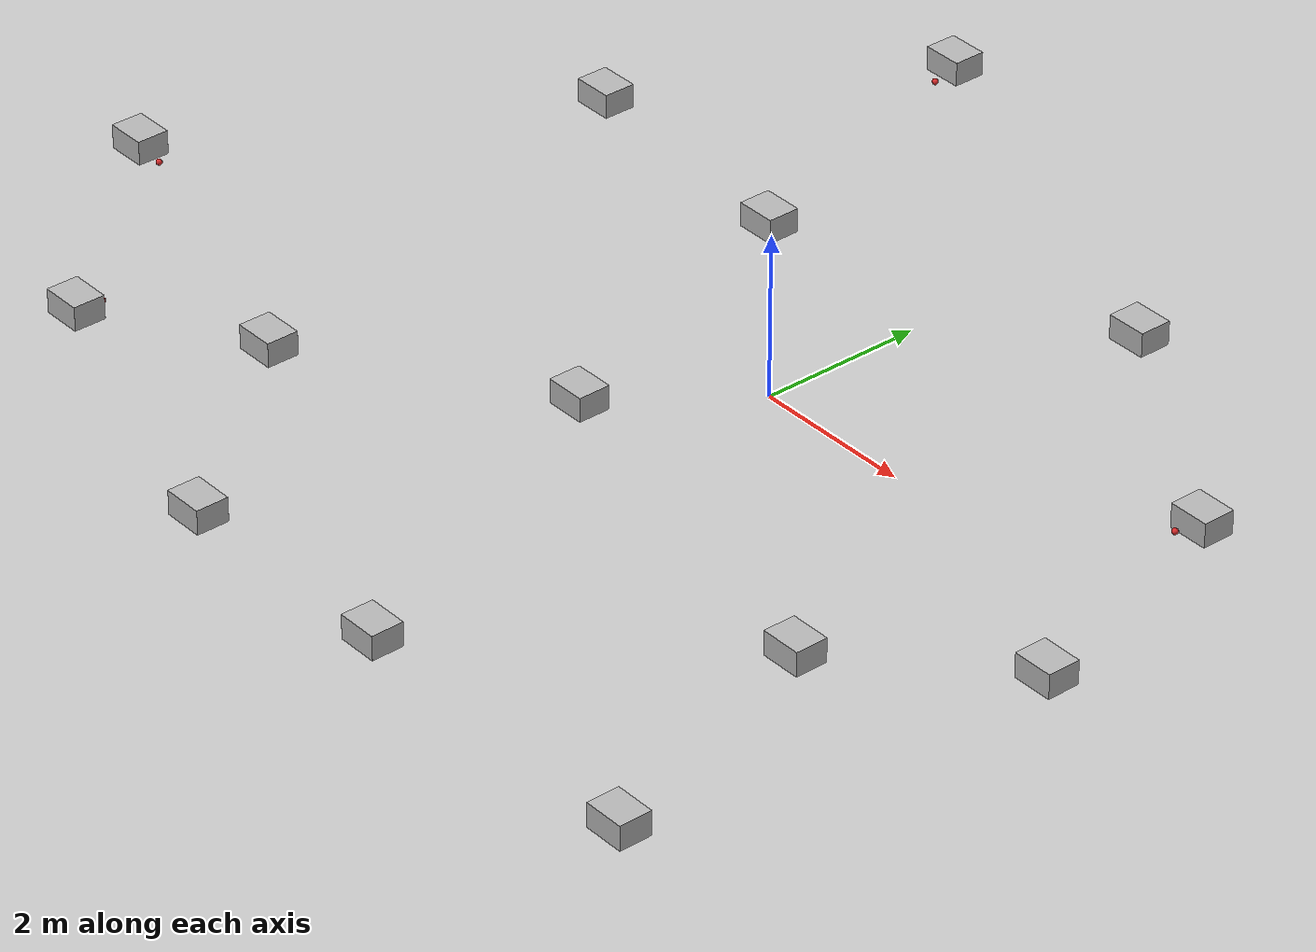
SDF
<sdf version="1.7">
 <world name="default">
  <light name="sun" type="directional">
   <pose>0 0 10 0 -0 0</pose>
   <diffuse>0.8 0.8 0.8 1</diffuse>
   <specular>0.2 0.2 0.2 1</specular>
   <attenuation>
    <range>1000</range>
    <constant>0.9</constant>
    <linear>0.01</linear>
    <quadratic>0.001</quadratic>
   </attenuation>
   <direction>-0.5 0.1 -0.9</direction>
   <spot><inner_angle>0</inner_angle><outer_angle>0</outer_angle><falloff>0</falloff></spot>
  </light>
  <model name="ground_plane">
   <static>1</static>
   <link name="link">
    <collision name="collision">
     <geometry><plane><normal>0 0 1</normal><size>100 100</size></plane></geometry>
     <surface><friction><ode><mu>100</mu><mu2>50</mu2></ode></friction></surface>
    </collision>
    <visual name="visual">
     <cast_shadows>0</cast_shadows>
     <geometry><plane><normal>0 0 1</normal><size>100 100</size></plane></geometry>
     <material>
      <script><uri>file://media/materials/scripts/gazebo.material</uri><name>Gazebo/Grey</name></script>
     </material>
    </visual>
   </link>
  </model>
  <gravity>0 0 -9.8</gravity>
  <magnetic_field>6e-06 2.3e-05 -4.2e-05</magnetic_field>
  <atmosphere type="adiabatic"/>
  <physics type="ode">
   <max_step_size>0.001</max_step_size>
   <real_time_factor>1</real_time_factor>
   <real_time_update_rate>1000</real_time_update_rate>
  </physics>
  <scene><ambient>0.4 0.4 0.4 1</ambient><background>0.7 0.7 0.7 1</background><shadows>1</shadows></scene>
  <spherical_coordinates>
   <surface_model>EARTH_WGS84</surface_model>
   <latitude_deg>0</latitude_deg>
   <longitude_deg>0</longitude_deg>
   <elevation>0</elevation>
   <heading_deg>0</heading_deg>
  </spherical_coordinates>
  <model name="cardboard_box">
   <pose>-4.08646 -3.55953 0.149 0 -0 0</pose>
   <link name="link">
    <inertial>
     <mass>2</mass>
     <inertia>
      <ixx>0.0416667</ixx>
      <ixy>0</ixy>
      <ixz>0</ixz>
      <iyy>0.0566667</iyy>
      <iyz>0</iyz>
      <izz>0.0683333</izz>
     </inertia>
    </inertial>
    <collision name="collision">
     <geometry><box><size>0.5 0.4 0.3</size></box></geometry>
     <surface>
      <friction><ode><mu>1</mu><mu2>1</mu2></ode></friction>
      <contact><ode><kp>1e+07</kp><kd>1</kd><min_depth>0.001</min_depth><max_vel>0.1</max_vel></ode></contact>
     </surface>
    </collision>
    <visual name="visual">
     <pose>0 0 -0.15 0 -0 0</pose>
     <geometry>
      <mesh><uri>model://cardboard_box/meshes/cardboard_box.dae</uri><scale>1.25932 1.00745 0.755591</scale></mesh>
     </geometry>
    </visual>
   </link>
  </model>
  <model name="cardboard_box_0">
   <pose>-3.7887 6.05949 0.149 0 -0 0</pose>
   <link name="link">
    <inertial>
     <mass>2</mass>
     <inertia>
      <ixx>0.0416667</ixx>
      <ixy>0</ixy>
      <ixz>0</ixz>
      <iyy>0.0566667</iyy>
      <iyz>0</iyz>
      <izz>0.0683333</izz>
     </inertia>
    </inertial>
    <collision name="collision">
     <geometry><box><size>0.5 0.4 0.3</size></box></geometry>
     <surface>
      <friction><ode><mu>1</mu><mu2>1</mu2></ode></friction>
      <contact><ode><kp>1e+07</kp><kd>1</kd><min_depth>0.001</min_depth><max_vel>0.1</max_vel></ode></contact>
     </surface>
    </collision>
    <visual name="visual">
     <pose>0 0 -0.15 0 -0 0</pose>
     <geometry>
      <mesh><uri>model://cardboard_box/meshes/cardboard_box.dae</uri><scale>1.25932 1.00745 0.755591</scale></mesh>
     </geometry>
    </visual>
   </link>
  </model>
  <model name="cardboard_box_1">
   <pose>1.71637 3.75408 0.149 0 -0 0</pose>
   <link name="link">
    <inertial>
     <mass>2</mass>
     <inertia>
      <ixx>0.0416667</ixx>
      <ixy>0</ixy>
      <ixz>0</ixz>
      <iyy>0.0566667</iyy>
      <iyz>0</iyz>
      <izz>0.0683333</izz>
     </inertia>
    </inertial>
    <collision name="collision">
     <geometry><box><size>0.5 0.4 0.3</size></box></geometry>
     <surface>
      <friction><ode><mu>1</mu><mu2>1</mu2></ode></friction>
      <contact><ode><kp>1e+07</kp><kd>1</kd><min_depth>0.001</min_depth><max_vel>0.1</max_vel></ode></contact>
     </surface>
    </collision>
    <visual name="visual">
     <pose>0 0 -0.15 0 -0 0</pose>
     <geometry>
      <mesh><uri>model://cardboard_box/meshes/cardboard_box.dae</uri><scale>1.25932 1.00745 0.755591</scale></mesh>
     </geometry>
    </visual>
   </link>
  </model>
  <model name="cardboard_box_2">
   <pose>0.869314 -5.99769 0.149 0 -0 0</pose>
   <link name="link">
    <inertial>
     <mass>2</mass>
     <inertia>
      <ixx>0.0416667</ixx>
      <ixy>0</ixy>
      <ixz>0</ixz>
      <iyy>0.0566667</iyy>
      <iyz>0</iyz>
      <izz>0.0683333</izz>
     </inertia>
    </inertial>
    <collision name="collision">
     <geometry><box><size>0.5 0.4 0.3</size></box></geometry>
     <surface>
      <friction><ode><mu>1</mu><mu2>1</mu2></ode></friction>
      <contact><ode><kp>1e+07</kp><kd>1</kd><min_depth>0.001</min_depth><max_vel>0.1</max_vel></ode></contact>
     </surface>
    </collision>
    <visual name="visual">
     <pose>0 0 -0.15 0 -0 0</pose>
     <geometry>
      <mesh><uri>model://cardboard_box/meshes/cardboard_box.dae</uri><scale>1.25932 1.00745 0.755591</scale></mesh>
     </geometry>
    </visual>
   </link>
  </model>
  <model name="cardboard_box_3">
   <pose>3.77986 -2.91897 0.149 0 -0 0</pose>
   <link name="link">
    <inertial>
     <mass>2</mass>
     <inertia>
      <ixx>0.0416667</ixx>
      <ixy>0</ixy>
      <ixz>0</ixz>
      <iyy>0.0566667</iyy>
      <iyz>0</iyz>
      <izz>0.0683333</izz>
     </inertia>
    </inertial>
    <collision name="collision">
     <geometry><box><size>0.5 0.4 0.3</size></box></geometry>
     <surface>
      <friction><ode><mu>1</mu><mu2>1</mu2></ode></friction>
      <contact><ode><kp>1e+07</kp><kd>1</kd><min_depth>0.001</min_depth><max_vel>0.1</max_vel></ode></contact>
     </surface>
    </collision>
    <visual name="visual">
     <pose>0 0 -0.15 0 -0 0</pose>
     <geometry>
      <mesh><uri>model://cardboard_box/meshes/cardboard_box.dae</uri><scale>1.25932 1.00745 0.755591</scale></mesh>
     </geometry>
    </visual>
   </link>
  </model>
  <model name="cardboard_box_4">
   <pose>-1.14457 -1.66818 0.149 0 -0 0</pose>
   <link name="link">
    <inertial>
     <mass>2</mass>
     <inertia>
      <ixx>0.0416667</ixx>
      <ixy>0</ixy>
      <ixz>0</ixz>
      <iyy>0.0566667</iyy>
      <iyz>0</iyz>
      <izz>0.0683333</izz>
     </inertia>
    </inertial>
    <collision name="collision">
     <geometry><box><size>0.5 0.4 0.3</size></box></geometry>
     <surface>
      <friction><ode><mu>1</mu><mu2>1</mu2></ode></friction>
      <contact><ode><kp>1e+07</kp><kd>1</kd><min_depth>0.001</min_depth><max_vel>0.1</max_vel></ode></contact>
     </surface>
    </collision>
    <visual name="visual">
     <pose>0 0 -0.15 0 -0 0</pose>
     <geometry>
      <mesh><uri>model://cardboard_box/meshes/cardboard_box.dae</uri><scale>1.25932 1.00745 0.755591</scale></mesh>
     </geometry>
    </visual>
   </link>
  </model>
  <model name="cardboard_box_5">
   <pose>-5.78575 2.51837 0.149 0 -0 0</pose>
   <link name="link">
    <inertial>
     <mass>2</mass>
     <inertia>
      <ixx>0.0416667</ixx>
      <ixy>0</ixy>
      <ixz>0</ixz>
      <iyy>0.0566667</iyy>
      <iyz>0</iyz>
      <izz>0.0683333</izz>
     </inertia>
    </inertial>
    <collision name="collision">
     <geometry><box><size>0.5 0.4 0.3</size></box></geometry>
     <surface>
      <friction><ode><mu>1</mu><mu2>1</mu2></ode></friction>
      <contact><ode><kp>1e+07</kp><kd>1</kd><min_depth>0.001</min_depth><max_vel>0.1</max_vel></ode></contact>
     </surface>
    </collision>
    <visual name="visual">
     <pose>0 0 -0.15 0 -0 0</pose>
     <geometry>
      <mesh><uri>model://cardboard_box/meshes/cardboard_box.dae</uri><scale>1.25932 1.00745 0.755591</scale></mesh>
     </geometry>
    </visual>
   </link>
  </model>
  <model name="cardboard_box_6">
   <pose>-8.33695 -2.16386 0.149 0 -0 0</pose>
   <link name="link">
    <inertial>
     <mass>2</mass>
     <inertia>
      <ixx>0.0416667</ixx>
      <ixy>0</ixy>
      <ixz>0</ixz>
      <iyy>0.0566667</iyy>
      <iyz>0</iyz>
      <izz>0.0683333</izz>
     </inertia>
    </inertial>
    <collision name="collision">
     <geometry><box><size>0.5 0.4 0.3</size></box></geometry>
     <surface>
      <friction><ode><mu>1</mu><mu2>1</mu2></ode></friction>
      <contact><ode><kp>1e+07</kp><kd>1</kd><min_depth>0.001</min_depth><max_vel>0.1</max_vel></ode></contact>
     </surface>
    </collision>
    <visual name="visual">
     <pose>0 0 -0.15 0 -0 0</pose>
     <geometry>
      <mesh><uri>model://cardboard_box/meshes/cardboard_box.dae</uri><scale>1.25932 1.00745 0.755591</scale></mesh>
     </geometry>
    </visual>
   </link>
  </model>
  <model name="cardboard_box_7">
   <pose>4.73918 1.77466 0.149 0 -0 0</pose>
   <link name="link">
    <inertial>
     <mass>2</mass>
     <inertia>
      <ixx>0.0416667</ixx>
      <ixy>0</ixy>
      <ixz>0</ixz>
      <iyy>0.0566667</iyy>
      <iyz>0</iyz>
      <izz>0.0683333</izz>
     </inertia>
    </inertial>
    <collision name="collision">
     <geometry><box><size>0.5 0.4 0.3</size></box></geometry>
     <surface>
      <friction><ode><mu>1</mu><mu2>1</mu2></ode></friction>
      <contact><ode><kp>1e+07</kp><kd>1</kd><min_depth>0.001</min_depth><max_vel>0.1</max_vel></ode></contact>
     </surface>
    </collision>
    <visual name="visual">
     <pose>0 0 -0.15 0 -0 0</pose>
     <geometry>
      <mesh><uri>model://cardboard_box/meshes/cardboard_box.dae</uri><scale>1.25932 1.00745 0.755591</scale></mesh>
     </geometry>
    </visual>
   </link>
  </model>
  <model name="cardboard_box_8">
   <pose>4.85592 -6.0892 0.149 0 -0 0</pose>
   <link name="link">
    <inertial>
     <mass>2</mass>
     <inertia>
      <ixx>0.0416667</ixx>
      <ixy>0</ixy>
      <ixz>0</ixz>
      <iyy>0.0566667</iyy>
      <iyz>0</iyz>
      <izz>0.0683333</izz>
     </inertia>
    </inertial>
    <collision name="collision">
     <geometry><box><size>0.5 0.4 0.3</size></box></geometry>
     <surface>
      <friction><ode><mu>1</mu><mu2>1</mu2></ode></friction>
      <contact><ode><kp>1e+07</kp><kd>1</kd><min_depth>0.001</min_depth><max_vel>0.1</max_vel></ode></contact>
     </surface>
    </collision>
    <visual name="visual">
     <pose>0 0 -0.15 0 -0 0</pose>
     <geometry>
      <mesh><uri>model://cardboard_box/meshes/cardboard_box.dae</uri><scale>1.25932 1.00745 0.755591</scale></mesh>
     </geometry>
    </visual>
   </link>
  </model>
  <model name="cardboard_box_9">
   <pose>-5.98727 -4.72925 0.149 0 -0 0</pose>
   <link name="link">
    <inertial>
     <mass>2</mass>
     <inertia>
      <ixx>0.0416667</ixx>
      <ixy>0</ixy>
      <ixz>0</ixz>
      <iyy>0.0566667</iyy>
      <iyz>0</iyz>
      <izz>0.0683333</izz>
     </inertia>
    </inertial>
    <collision name="collision">
     <geometry><box><size>0.5 0.4 0.3</size></box></geometry>
     <surface>
      <friction><ode><mu>1</mu><mu2>1</mu2></ode></friction>
      <contact><ode><kp>1e+07</kp><kd>1</kd><min_depth>0.001</min_depth><max_vel>0.1</max_vel></ode></contact>
     </surface>
    </collision>
    <visual name="visual">
     <pose>0 0 -0.15 0 -0 0</pose>
     <geometry>
      <mesh><uri>model://cardboard_box/meshes/cardboard_box.dae</uri><scale>1.25932 1.00745 0.755591</scale></mesh>
     </geometry>
    </visual>
   </link>
  </model>
  <model name="cardboard_box_10">
   <pose>-2.56206 2.1946 0.149 0 -0 0</pose>
   <link name="link">
    <inertial>
     <mass>2</mass>
     <inertia>
      <ixx>0.0416667</ixx>
      <ixy>0</ixy>
      <ixz>0</ixz>
      <iyy>0.0566667</iyy>
      <iyz>0</iyz>
      <izz>0.0683333</izz>
     </inertia>
    </inertial>
    <collision name="collision">
     <geometry><box><size>0.5 0.4 0.3</size></box></geometry>
     <surface>
      <friction><ode><mu>1</mu><mu2>1</mu2></ode></friction>
      <contact><ode><kp>1e+07</kp><kd>1</kd><min_depth>0.001</min_depth><max_vel>0.1</max_vel></ode></contact>
     </surface>
    </collision>
    <visual name="visual">
     <pose>0 0 -0.15 0 -0 0</pose>
     <geometry>
      <mesh><uri>model://cardboard_box/meshes/cardboard_box.dae</uri><scale>1.25932 1.00745 0.755591</scale></mesh>
     </geometry>
    </visual>
   </link>
  </model>
  <model name="cardboard_box_11">
   <pose>5.66 -1.24399 0.149 0 -0 0</pose>
   <link name="link">
    <inertial>
     <mass>2</mass>
     <inertia>
      <ixx>0.0416667</ixx>
      <ixy>0</ixy>
      <ixz>0</ixz>
      <iyy>0.0566667</iyy>
      <iyz>0</iyz>
      <izz>0.0683333</izz>
     </inertia>
    </inertial>
    <collision name="collision">
     <geometry><box><size>0.5 0.4 0.3</size></box></geometry>
     <surface>
      <friction><ode><mu>1</mu><mu2>1</mu2></ode></friction>
      <contact><ode><kp>1e+07</kp><kd>1</kd><min_depth>0.001</min_depth><max_vel>0.1</max_vel></ode></contact>
     </surface>
    </collision>
    <visual name="visual">
     <pose>0 0 -0.15 0 -0 0</pose>
     <geometry>
      <mesh><uri>model://cardboard_box/meshes/cardboard_box.dae</uri><scale>1.25932 1.00745 0.755591</scale></mesh>
     </geometry>
    </visual>
   </link>
  </model>
  <model name="cardboard_box_12">
   <pose>-2.02648 -6.02262 0.149 0 -0 0</pose>
   <link name="link">
    <inertial>
     <mass>2</mass>
     <inertia>
      <ixx>0.0416667</ixx>
      <ixy>0</ixy>
      <ixz>0</ixz>
      <iyy>0.0566667</iyy>
      <iyz>0</iyz>
      <izz>0.0683333</izz>
     </inertia>
    </inertial>
    <collision name="collision">
     <geometry><box><size>0.5 0.4 0.3</size></box></geometry>
     <surface>
      <friction><ode><mu>1</mu><mu2>1</mu2></ode></friction>
      <contact><ode><kp>1e+07</kp><kd>1</kd><min_depth>0.001</min_depth><max_vel>0.1</max_vel></ode></contact>
     </surface>
    </collision>
    <visual name="visual">
     <pose>0 0 -0.15 0 -0 0</pose>
     <geometry>
      <mesh><uri>model://cardboard_box/meshes/cardboard_box.dae</uri><scale>1.25932 1.00745 0.755591</scale></mesh>
     </geometry>
    </visual>
   </link>
  </model>
  <model name="cricket_ball">
   <link name="link">
    <pose>0 0 0.0375 0 -0 0</pose>
    <inertial>
     <mass>0.1467</mass>
     <inertia>
      <ixx>8.25187e-05</ixx>
      <ixy>0</ixy>
      <ixz>0</ixz>
      <iyy>8.25187e-05</iyy>
      <iyz>0</iyz>
      <izz>8.25187e-05</izz>
     </inertia>
    </inertial>
    <collision name="collision">
     <geometry><sphere><radius>0.0375</radius></sphere></geometry>
     <surface>
      <contact>
       <poissons_ratio>0.347</poissons_ratio>
       <elastic_modulus>8.8e+09</elastic_modulus>
       <ode><kp>100000</kp><kd>100</kd><max_vel>100</max_vel><min_depth>0.001</min_depth></ode>
      </contact>
      <friction>
       <torsional>
        <coefficient>1</coefficient>
        <use_patch_radius>0</use_patch_radius>
        <surface_radius>0.01</surface_radius>
       </torsional>
      </friction>
     </surface>
    </collision>
    <visual name="visual">
     <geometry><sphere><radius>0.0375</radius></sphere></geometry>
     <material>
      <script><uri>file://media/materials/scripts/gazebo.material</uri><name>Gazebo/Red</name></script>
     </material>
    </visual>
    <velocity_decay><linear>0</linear><angular>0.005</angular></velocity_decay>
   </link>
   <pose>-2.05854 -5.66841 -0.001014 0 -0 0</pose>
  </model>
  <model name="cricket_ball_0">
   <link name="link">
    <pose>0 0 0.0375 0 -0 0</pose>
    <inertial>
     <mass>0.1467</mass>
     <inertia>
      <ixx>8.25187e-05</ixx>
      <ixy>0</ixy>
      <ixz>0</ixz>
      <iyy>8.25187e-05</iyy>
      <iyz>0</iyz>
      <izz>8.25187e-05</izz>
     </inertia>
    </inertial>
    <collision name="collision">
     <geometry><sphere><radius>0.0375</radius></sphere></geometry>
     <surface>
      <contact>
       <poissons_ratio>0.347</poissons_ratio>
       <elastic_modulus>8.8e+09</elastic_modulus>
       <ode><kp>100000</kp><kd>100</kd><max_vel>100</max_vel><min_depth>0.001</min_depth></ode>
      </contact>
      <friction>
       <torsional>
        <coefficient>1</coefficient>
        <use_patch_radius>0</use_patch_radius>
        <surface_radius>0.01</surface_radius>
       </torsional>
      </friction>
     </surface>
    </collision>
    <visual name="visual">
     <geometry><sphere><radius>0.0375</radius></sphere></geometry>
     <material>
      <script><uri>file://media/materials/scripts/gazebo.material</uri><name>Gazebo/Red</name></script>
     </material>
    </visual>
    <velocity_decay><linear>0</linear><angular>0.005</angular></velocity_decay>
   </link>
   <pose>-6.00368 -4.37237 -0.001014 0 -0 0</pose>
  </model>
  <model name="cricket_ball_2">
   <link name="link">
    <pose>0 0 0.0375 0 -0 0</pose>
    <inertial>
     <mass>0.1467</mass>
     <inertia>
      <ixx>8.25187e-05</ixx>
      <ixy>0</ixy>
      <ixz>0</ixz>
      <iyy>8.25187e-05</iyy>
      <iyz>0</iyz>
      <izz>8.25187e-05</izz>
     </inertia>
    </inertial>
    <collision name="collision">
     <geometry><sphere><radius>0.0375</radius></sphere></geometry>
     <surface>
      <contact>
       <poissons_ratio>0.347</poissons_ratio>
       <elastic_modulus>8.8e+09</elastic_modulus>
       <ode><kp>100000</kp><kd>100</kd><max_vel>100</max_vel><min_depth>0.001</min_depth></ode>
      </contact>
      <friction>
       <torsional>
        <coefficient>1</coefficient>
        <use_patch_radius>0</use_patch_radius>
        <surface_radius>0.01</surface_radius>
       </torsional>
      </friction>
     </surface>
    </collision>
    <visual name="visual">
     <geometry><sphere><radius>0.0375</radius></sphere></geometry>
     <material>
      <script><uri>file://media/materials/scripts/gazebo.material</uri><name>Gazebo/Red</name></script>
     </material>
    </visual>
    <velocity_decay><linear>0</linear><angular>0.005</angular></velocity_decay>
   </link>
   <pose>-7.95272 -2.18697 -0.001014 0 -0 0</pose>
  </model>
  <model name="cricket_ball_4">
   <link name="link">
    <pose>0 0 0.0375 0 -0 0</pose>
    <inertial>
     <mass>0.1467</mass>
     <inertia>
      <ixx>8.25187e-05</ixx>
      <ixy>0</ixy>
      <ixz>0</ixz>
      <iyy>8.25187e-05</iyy>
      <iyz>0</iyz>
      <izz>8.25187e-05</izz>
     </inertia>
    </inertial>
    <collision name="collision">
     <geometry><sphere><radius>0.0375</radius></sphere></geometry>
     <surface>
      <contact>
       <poissons_ratio>0.347</poissons_ratio>
       <elastic_modulus>8.8e+09</elastic_modulus>
       <ode><kp>100000</kp><kd>100</kd><max_vel>100</max_vel><min_depth>0.001</min_depth></ode>
      </contact>
      <friction>
       <torsional>
        <coefficient>1</coefficient>
        <use_patch_radius>0</use_patch_radius>
        <surface_radius>0.01</surface_radius>
       </torsional>
      </friction>
     </surface>
    </collision>
    <visual name="visual">
     <geometry><sphere><radius>0.0375</radius></sphere></geometry>
     <material>
      <script><uri>file://media/materials/scripts/gazebo.material</uri><name>Gazebo/Red</name></script>
     </material>
    </visual>
    <velocity_decay><linear>0</linear><angular>0.005</angular></velocity_decay>
   </link>
   <pose>-3.7191 5.70232 -0.001014 0 -0 0</pose>
  </model>
  <model name="cricket_ball_1">
   <link name="link">
    <pose>0 0 0.0375 0 -0 0</pose>
    <inertial>
     <mass>0.1467</mass>
     <inertia>
      <ixx>8.25187e-05</ixx>
      <ixy>0</ixy>
      <ixz>0</ixz>
      <iyy>8.25187e-05</iyy>
      <iyz>0</iyz>
      <izz>8.25187e-05</izz>
     </inertia>
    </inertial>
    <collision name="collision">
     <geometry><sphere><radius>0.0375</radius></sphere></geometry>
     <surface>
      <contact>
       <poissons_ratio>0.347</poissons_ratio>
       <elastic_modulus>8.8e+09</elastic_modulus>
       <ode><kp>100000</kp><kd>100</kd><max_vel>100</max_vel><min_depth>0.001</min_depth></ode>
      </contact>
      <friction>
       <torsional>
        <coefficient>1</coefficient>
        <use_patch_radius>0</use_patch_radius>
        <surface_radius>0.01</surface_radius>
       </torsional>
      </friction>
     </surface>
    </collision>
    <visual name="visual">
     <geometry><sphere><radius>0.0375</radius></sphere></geometry>
     <material>
      <script><uri>file://media/materials/scripts/gazebo.material</uri><name>Gazebo/Red</name></script>
     </material>
    </visual>
    <velocity_decay><linear>0</linear><angular>0.005</angular></velocity_decay>
   </link>
   <pose>4.61579 1.52064 -0.001014 0 -0 0</pose>
  </model>
  <model name="cricket_ball_3">
   <link name="link">
    <pose>0 0 0.0375 0 -0 0</pose>
    <inertial>
     <mass>0.1467</mass>
     <inertia>
      <ixx>8.25187e-05</ixx>
      <ixy>0</ixy>
      <ixz>0</ixz>
      <iyy>8.25187e-05</iyy>
      <iyz>0</iyz>
      <izz>8.25187e-05</izz>
     </inertia>
    </inertial>
    <collision name="collision">
     <geometry><sphere><radius>0.0375</radius></sphere></geometry>
     <surface>
      <contact>
       <poissons_ratio>0.347</poissons_ratio>
       <elastic_modulus>8.8e+09</elastic_modulus>
       <ode><kp>100000</kp><kd>100</kd><max_vel>100</max_vel><min_depth>0.001</min_depth></ode>
      </contact>
      <friction>
       <torsional>
        <coefficient>1</coefficient>
        <use_patch_radius>0</use_patch_radius>
        <surface_radius>0.01</surface_radius>
       </torsional>
      </friction>
     </surface>
    </collision>
    <visual name="visual">
     <geometry><sphere><radius>0.0375</radius></sphere></geometry>
     <material>
      <script><uri>file://media/materials/scripts/gazebo.material</uri><name>Gazebo/Red</name></script>
     </material>
    </visual>
    <velocity_decay><linear>0</linear><angular>0.005</angular></velocity_decay>
   </link>
   <pose>4.70772 -5.73488 -0.001014 0 -0 0</pose>
  </model>
 </world>
</sdf>
